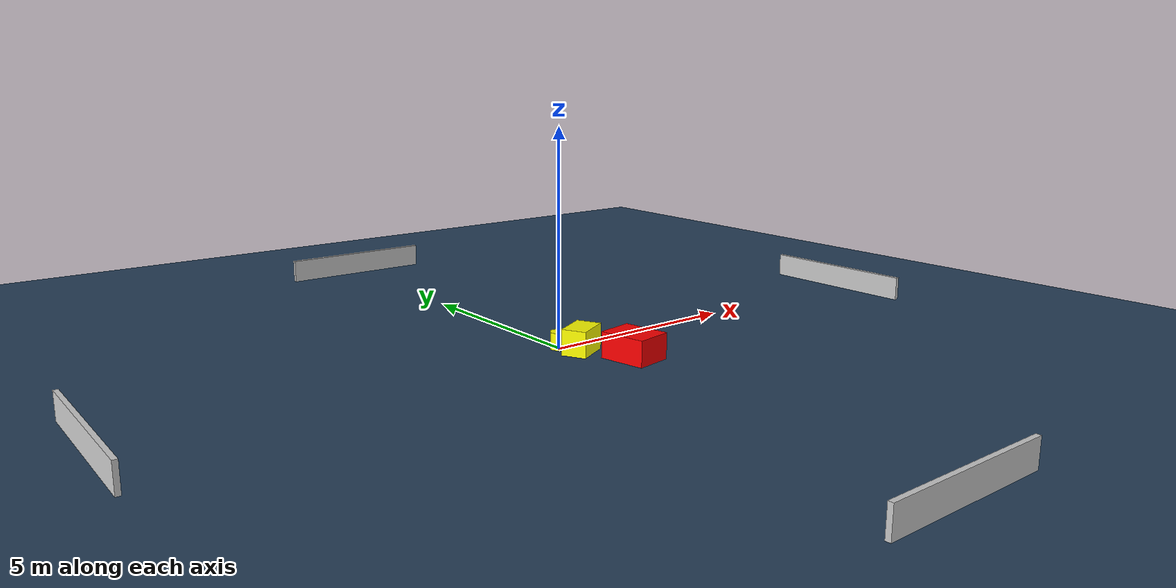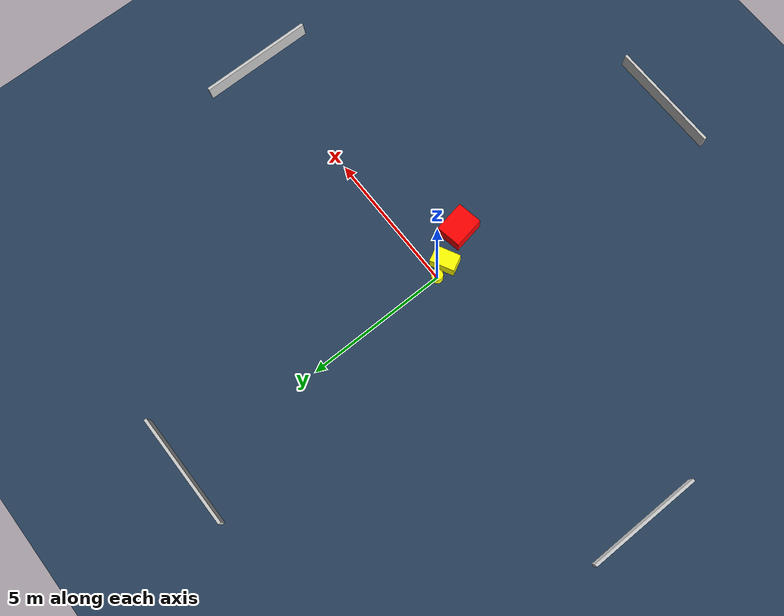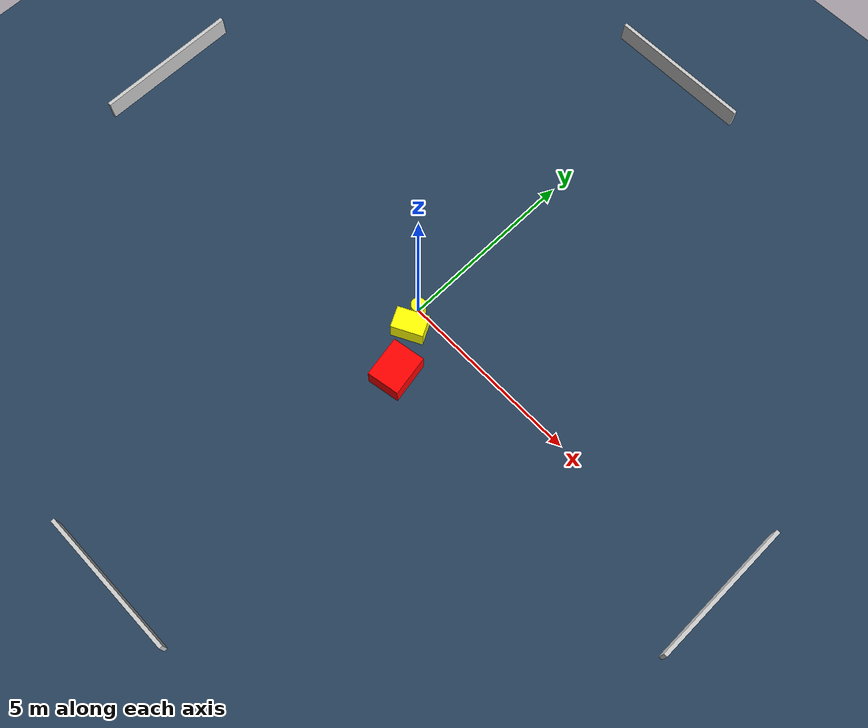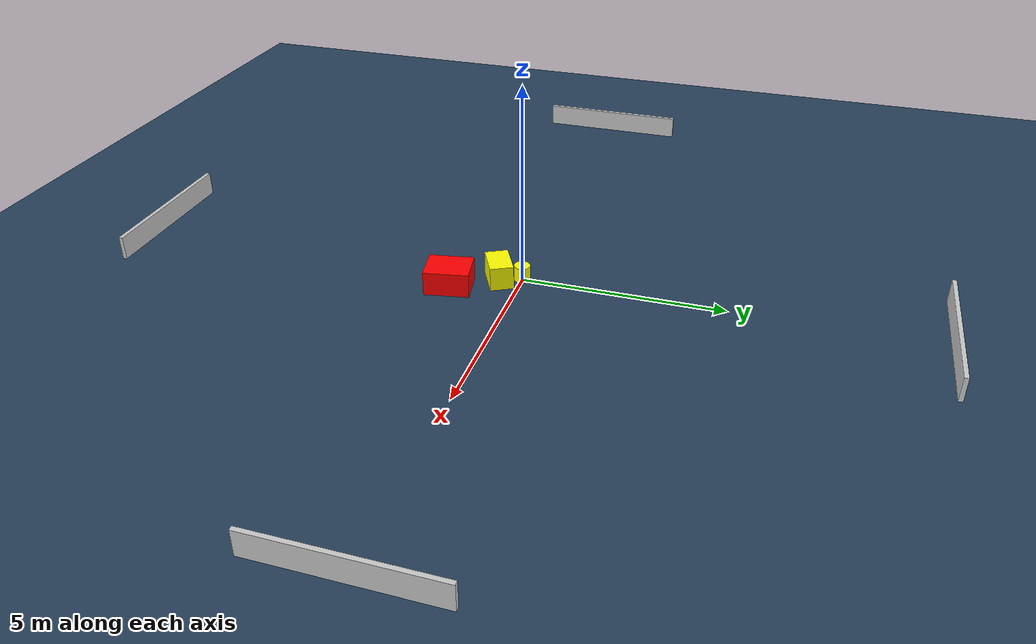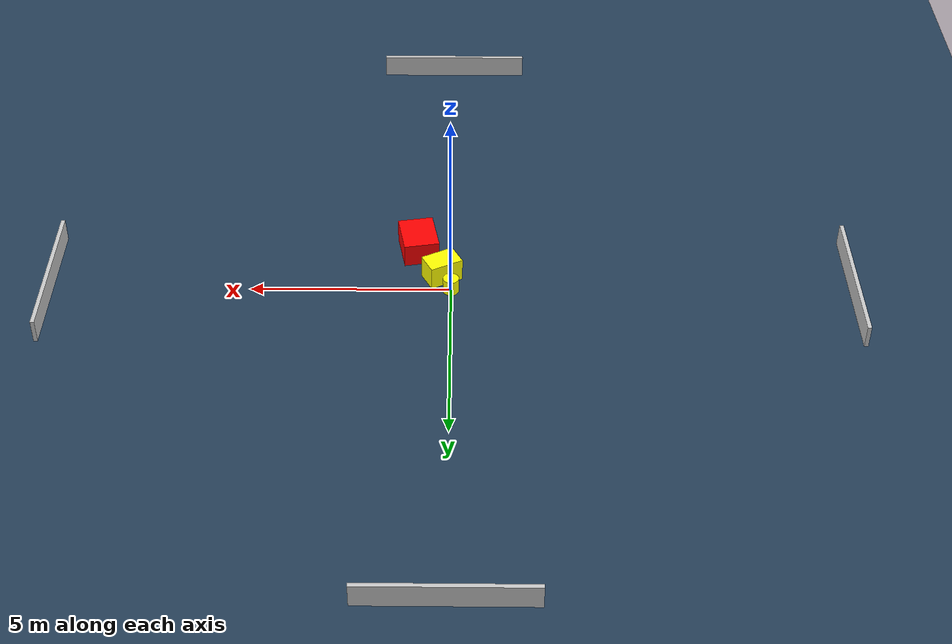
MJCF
<?xml version="1.0" ?>
<mujoco model="generated_environment">
  <option timestep="0.01" integrator="RK4" cone="elliptic"/>
  <default>
    <geom density="1"/>
  </default>
  <asset>
    <texture builtin="gradient" height="3072" name="skybox" rgb1="0.3 0.5 0.7" rgb2="0 0 0" type="skybox" width="512"/>
    <texture builtin="checker" height="300" name="groundplane" rgb1="0.2 0.3 0.4" rgb2="0.1 0.2 0.3" type="2d" width="300"/>
    <material name="groundplane" reflectance="0.2" texrepeat="5 5" texture="groundplane"/>
  </asset>
  <worldbody>
    <light dir="0 0 -1" directional="true" pos="0 0 1.5"/>
    <geom condim="3" friction="0.5 0.005 0.001" material="groundplane" name="floor" pos="0 0 0" size="0 0 0.05" type="plane"/>
    <body name="walls">
      <geom name="wall_1" condim="4" pos="-10.0 0.0 0.3" rgba="0.800000011920929 0.800000011920929 0.800000011920929 1.0" size="0.05 2.0 0.3" type="box"/>
      <geom name="wall_2" condim="4" pos="10.0 0.0 0.3" rgba="0.800000011920929 0.800000011920929 0.800000011920929 1.0" size="0.05 2.0 0.3" type="box"/>
      <geom name="wall_3" condim="4" pos="0.0 -10.0 0.3" rgba="0.800000011920929 0.800000011920929 0.800000011920929 1.0" size="2.0 0.05 0.3" type="box"/>
      <geom name="wall_4" condim="4" pos="0.0 10.0 0.3" rgba="0.800000011920929 0.800000011920929 0.800000011920929 1.0" size="2.0 0.05 0.3" type="box"/>
    </body>
    <body name="robot">
      <joint name="joint_x" type="slide" pos="0 0 0" axis="1 0 0"/>
      <joint name="joint_y" type="slide" pos="0 0 0" axis="0 1 0"/>
      <geom name="robot" type="cylinder" pos="0.0 0.0 0.2" size="0.2 0.2 0.0" mass="5.0" friction="1.0 0.005 0.0001" condim="4" rgba="1.0 1.0 0.0 1.0"/>
    </body>
    <body name="obstacle_1_movable">
      <geom name="obstacle_1_movable" condim="4" pos="0.2300939527647441 -0.5227517310016373 0.3" euler="0 0 27.315440459359593" friction="0.0 0.005 0.001" rgba="1.0 1.0 0.0 1.0" size="0.42995970089852426 0.2897111031624782 0.3" type="box" mass="0.1"/>
      <joint type="free"/>
    </body>
    <body name="obstacle_2_static">
      <geom name="obstacle_2_static" condim="4" pos="0.840902436798378 -1.5990227948047764 0.3" euler="0 0 10.227294906256468" friction="0.0 0.005 0.001" rgba="1.0 0.0 0.0 1.0" size="0.44590572010062635 0.5538183561387641 0.3" type="box"/>
    </body>
  </worldbody>
  <actuator>
    <motor name="actuator_x" joint="joint_x" gear="1" ctrlrange="-1 1"/>
    <motor name="actuator_y" joint="joint_y" gear="1" ctrlrange="-1 1"/>
  </actuator>
</mujoco>
